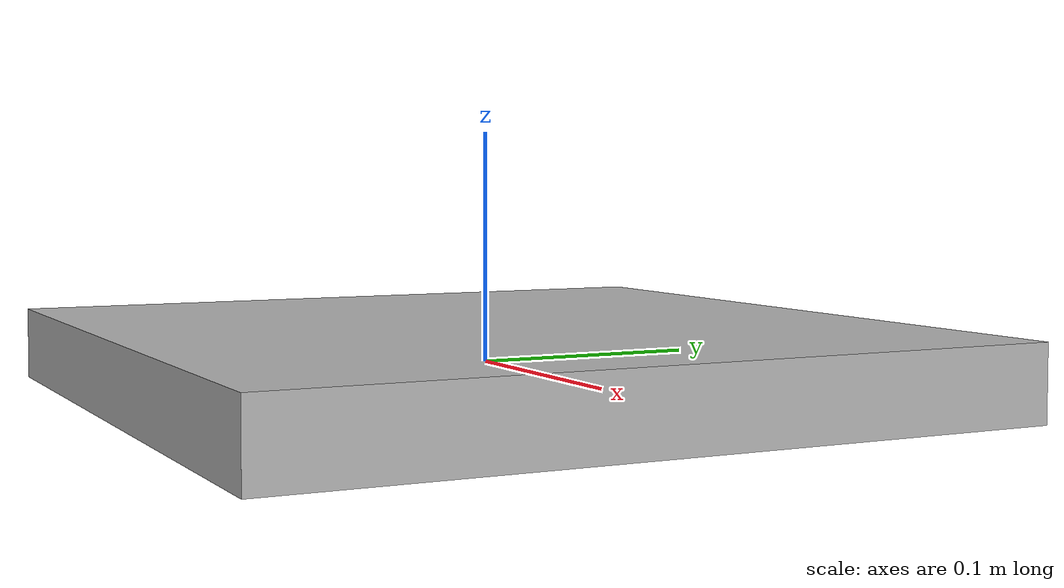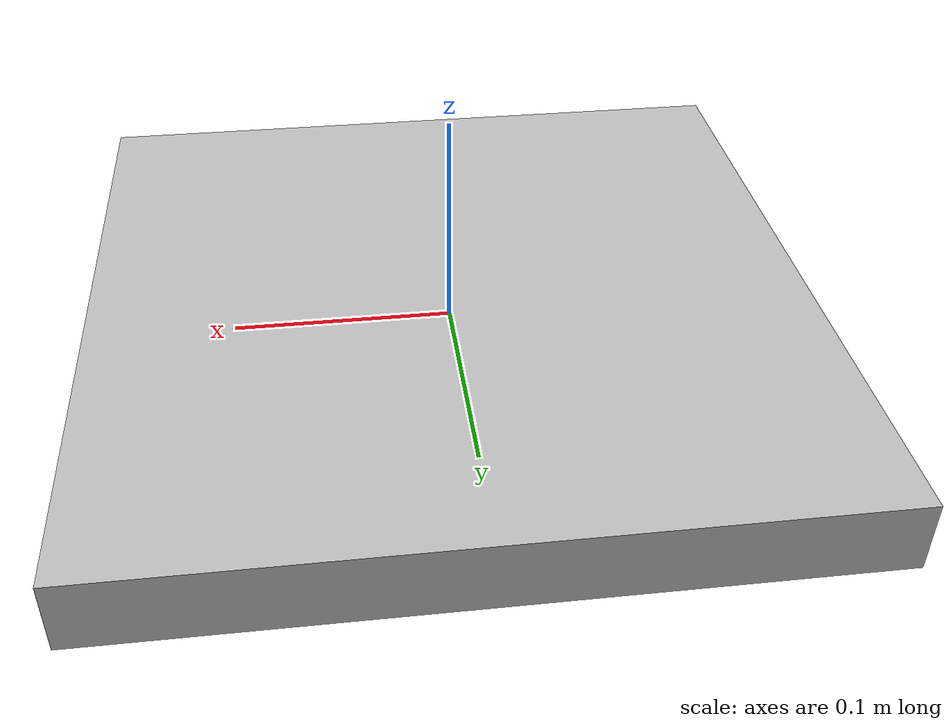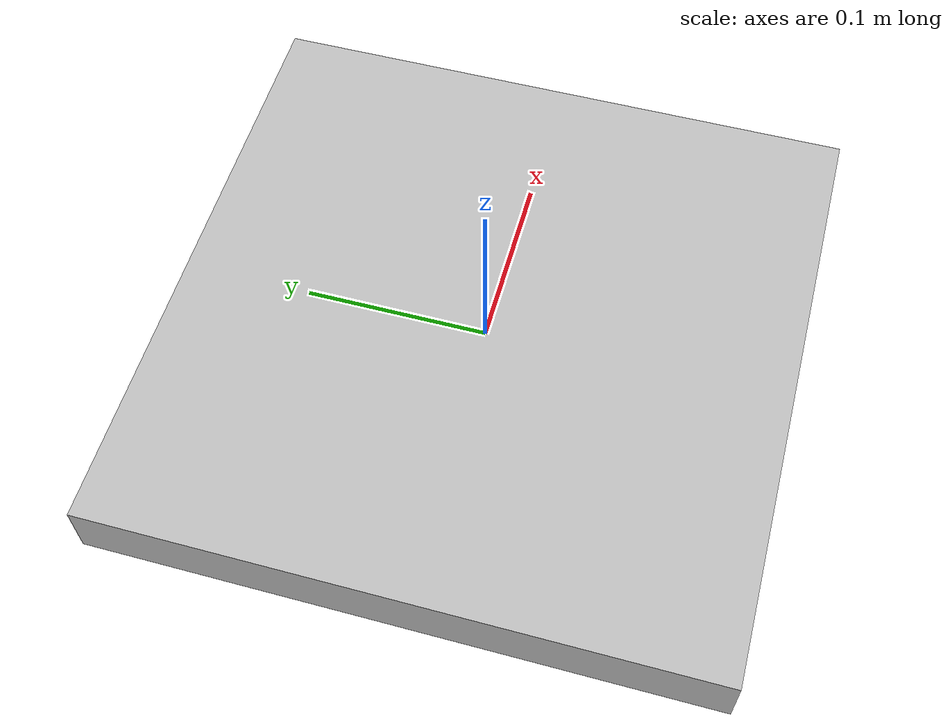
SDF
<?xml version='1.0' ?>
<sdf version='1.6'>
  <model name='April_Tag_3'>
    <link name='main'>
      <pose frame=''>0 0 0 0 0 0</pose>
      <visual name='visual'>
        <geometry>
          <mesh>
            <scale>0.165 0.165 0.165</scale>
            <uri>meshes/AprilTags3_copy.dae</uri>
          </mesh>
        </geometry>
      </visual>
     </link>
    <static>1</static>
 </model>
</sdf>
